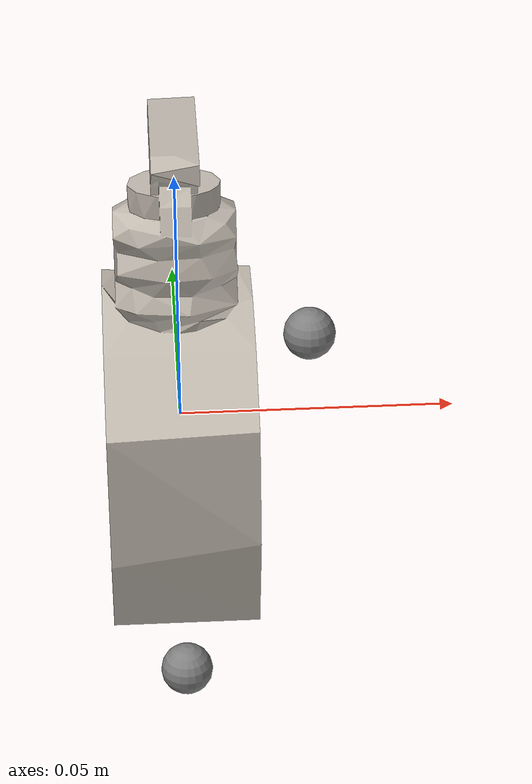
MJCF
<!-- sample of a general object defined in mujoco -->
<mujoco model="atomizer">
	<asset>
		<mesh file="meshes/atomizer.stl" name="atomizer_mesh" scale="1.5 1 1"/>
		<texture type="cube" file="../textures/atomizer.png" name="tex-atomizer"/>
		<material name="atomizer" reflectance="0.5" texrepeat="10 20" texture="tex-atomizer" texuniform="true"/>
	</asset>
	<worldbody>
		<body>
			<body name="collision">
				<geom pos="0 0 0" mesh="atomizer_mesh" type="mesh" solimp="0.998 0.998 0.001" solref="0.001 1" density="100" friction="0.95 0.3 0.1" material="atomizer" group="1"/>
			</body>
			<body name="visual">
				<geom pos="0 0 0" mesh="atomizer_mesh" type="mesh" material="atomizer"  conaffinity="0" contype="0"  group="1"/>
			</body>
			<site pos="0 0 -0.06" name="bottom_site"/>
			<site pos="0 0 0.04" name="top_site"/>
			<site pos="0.0254 0.0254 0" name="horizontal_radius_site"/>
		</body>
	</worldbody>
</mujoco>
